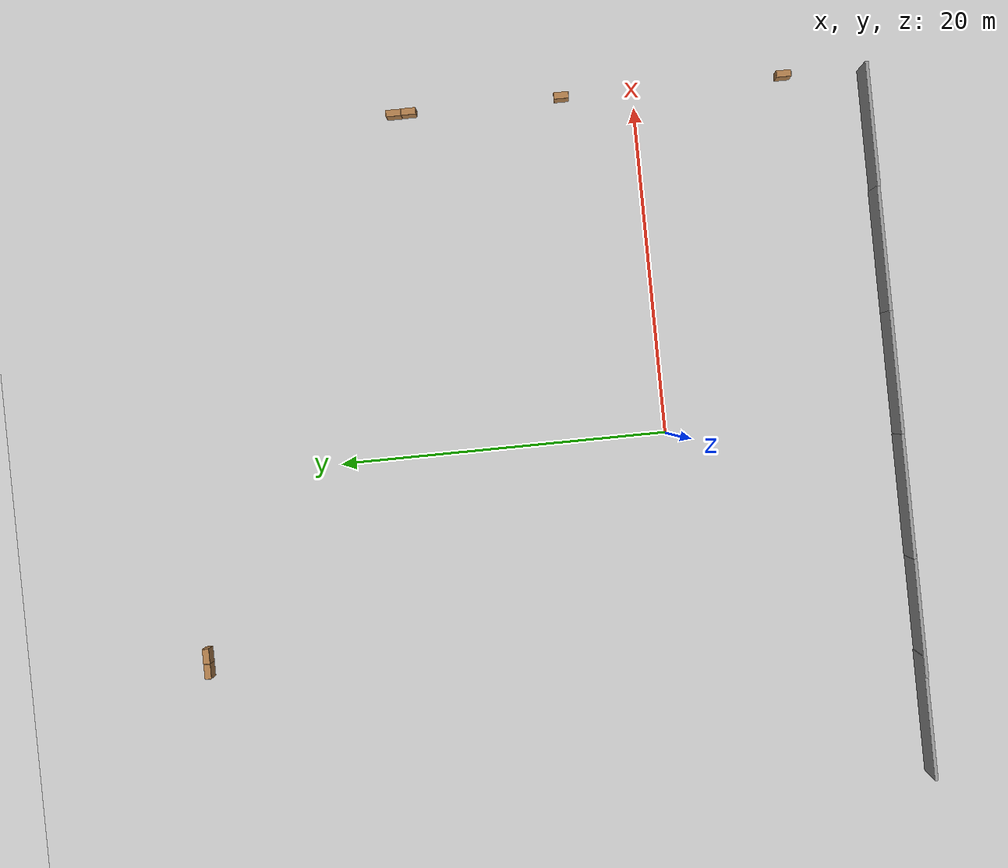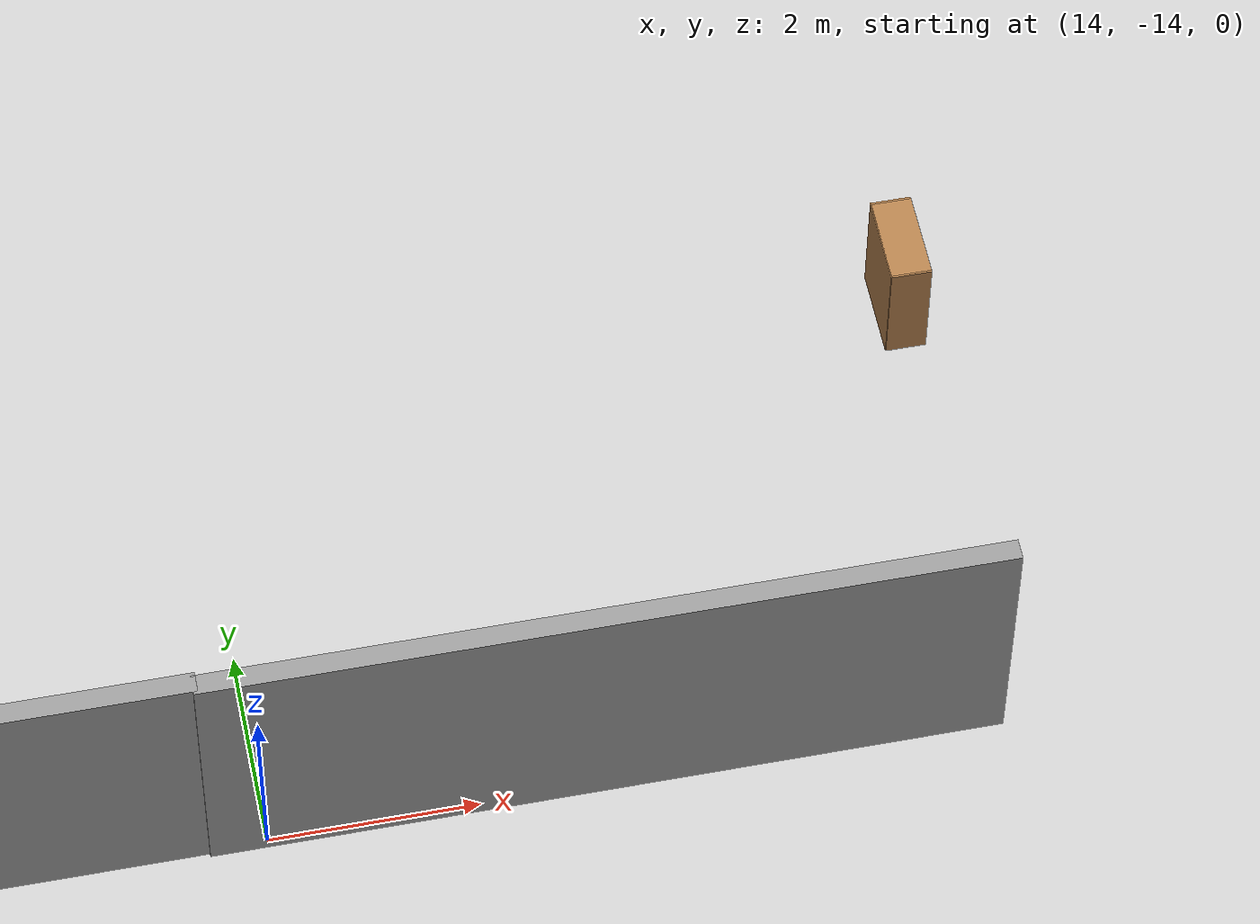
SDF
<sdf version="1.4">
 <world name="default">
  <light name="sun" type="directional">
   <pose>0 0 10 0 -0 0</pose>
   <diffuse>0.8 0.8 0.8 1</diffuse>
   <specular>0.2 0.2 0.2 1</specular>
   <attenuation>
    <range>1000</range>
    <constant>0.9</constant>
    <linear>0.01</linear>
    <quadratic>0.001</quadratic>
   </attenuation>
   <direction>-0.5 0.1 -0.9</direction>
  </light>
  <model name="ground_plane">
   <static>1</static>
   <link name="link">
    <collision name="collision">
     <geometry><plane><normal>0 0 1</normal><size>100 100</size></plane></geometry>
     <surface><friction><ode><mu>100</mu><mu2>50</mu2></ode></friction></surface>
    </collision>
    <visual name="visual">
     <cast_shadows>0</cast_shadows>
     <geometry><plane><normal>0 0 1</normal><size>100 100</size></plane></geometry>
     <material>
      <script><uri>file://media/materials/scripts/gazebo.material</uri><name>Gazebo/Grey</name></script>
     </material>
    </visual>
    <velocity_decay><linear>0</linear><angular>0</angular></velocity_decay>
   </link>
  </model>
  <physics type="ode">
   <max_step_size>0.01</max_step_size>
   <real_time_factor>1</real_time_factor>
   <real_time_update_rate>100</real_time_update_rate>
   <gravity>0 0 -9.8</gravity>
  </physics>
  <scene><ambient>0.4 0.4 0.4 1</ambient><background>0.7 0.7 0.7 1</background><shadows>1</shadows></scene>
  <spherical_coordinates>
   <surface_model>EARTH_WGS84</surface_model>
   <latitude_deg>0</latitude_deg>
   <longitude_deg>0</longitude_deg>
   <elevation>0</elevation>
   <heading_deg>0</heading_deg>
  </spherical_coordinates>
  <model name="bookshelf_1">
   <static>1</static>
   <link name="link">
    <inertial><mass>1</mass></inertial>
    <collision name="back">
     <pose>0 0.005 0.6 0 -0 0</pose>
     <geometry><box><size>0.9 0.01 1.2</size></box></geometry>
    </collision>
    <visual name="visual1">
     <pose>0 0.005 0.6 0 -0 0</pose>
     <geometry><box><size>0.9 0.01 1.2</size></box></geometry>
     <material>
      <script><uri>file://media/materials/scripts/gazebo.material</uri><name>Gazebo/Wood</name></script>
     </material>
    </visual>
    <collision name="left_side">
     <pose>0.45 -0.195 0.6 0 -0 0</pose>
     <geometry><box><size>0.02 0.4 1.2</size></box></geometry>
    </collision>
    <visual name="visual2">
     <pose>0.45 -0.195 0.6 0 -0 0</pose>
     <geometry><box><size>0.02 0.4 1.2</size></box></geometry>
     <material>
      <script><uri>file://media/materials/scripts/gazebo.material</uri><name>Gazebo/Wood</name></script>
     </material>
    </visual>
    <collision name="right_side">
     <pose>-0.45 -0.195 0.6 0 -0 0</pose>
     <geometry><box><size>0.02 0.4 1.2</size></box></geometry>
    </collision>
    <visual name="visual3">
     <pose>-0.45 -0.195 0.6 0 -0 0</pose>
     <geometry><box><size>0.02 0.4 1.2</size></box></geometry>
     <material>
      <script><uri>file://media/materials/scripts/gazebo.material</uri><name>Gazebo/Wood</name></script>
     </material>
    </visual>
    <collision name="bottom">
     <pose>0 -0.195 0.03 0 -0 0</pose>
     <geometry><box><size>0.88 0.4 0.06</size></box></geometry>
    </collision>
    <visual name="visual4">
     <pose>0 -0.195 0.03 0 -0 0</pose>
     <geometry><box><size>0.88 0.4 0.06</size></box></geometry>
     <material>
      <script><uri>file://media/materials/scripts/gazebo.material</uri><name>Gazebo/Wood</name></script>
     </material>
    </visual>
    <collision name="top">
     <pose>0 -0.195 1.19 0 -0 0</pose>
     <geometry><box><size>0.88 0.4 0.02</size></box></geometry>
    </collision>
    <visual name="visual5">
     <pose>0 -0.195 1.19 0 -0 0</pose>
     <geometry><box><size>0.88 0.4 0.02</size></box></geometry>
     <material>
      <script><uri>file://media/materials/scripts/gazebo.material</uri><name>Gazebo/Wood</name></script>
     </material>
    </visual>
    <collision name="low_shelf">
     <pose>0 -0.195 0.43 0 -0 0</pose>
     <geometry><box><size>0.88 0.4 0.02</size></box></geometry>
    </collision>
    <visual name="visual6">
     <pose>0 -0.195 0.43 0 -0 0</pose>
     <geometry><box><size>0.88 0.4 0.02</size></box></geometry>
     <material>
      <script><uri>file://media/materials/scripts/gazebo.material</uri><name>Gazebo/Wood</name></script>
     </material>
    </visual>
    <collision name="high_shelf">
     <pose>0 -0.195 0.8 0 -0 0</pose>
     <geometry><box><size>0.88 0.4 0.02</size></box></geometry>
    </collision>
    <visual name="visual7">
     <pose>0 -0.195 0.8 0 -0 0</pose>
     <geometry><box><size>0.88 0.4 0.02</size></box></geometry>
     <material>
      <script><uri>file://media/materials/scripts/gazebo.material</uri><name>Gazebo/Wood</name></script>
     </material>
    </visual>
    <velocity_decay><linear>0</linear><angular>0</angular></velocity_decay>
   </link>
   <pose>20.8468 -9.22027 0 0 -0 1.5708</pose>
  </model>
  <model name="bookshelf_2">
   <static>1</static>
   <link name="link">
    <inertial><mass>1</mass></inertial>
    <collision name="back">
     <pose>0 0.005 0.6 0 -0 0</pose>
     <geometry><box><size>0.9 0.01 1.2</size></box></geometry>
    </collision>
    <visual name="visual1">
     <pose>0 0.005 0.6 0 -0 0</pose>
     <geometry><box><size>0.9 0.01 1.2</size></box></geometry>
     <material>
      <script><uri>file://media/materials/scripts/gazebo.material</uri><name>Gazebo/Wood</name></script>
     </material>
    </visual>
    <collision name="left_side">
     <pose>0.45 -0.195 0.6 0 -0 0</pose>
     <geometry><box><size>0.02 0.4 1.2</size></box></geometry>
    </collision>
    <visual name="visual2">
     <pose>0.45 -0.195 0.6 0 -0 0</pose>
     <geometry><box><size>0.02 0.4 1.2</size></box></geometry>
     <material>
      <script><uri>file://media/materials/scripts/gazebo.material</uri><name>Gazebo/Wood</name></script>
     </material>
    </visual>
    <collision name="right_side">
     <pose>-0.45 -0.195 0.6 0 -0 0</pose>
     <geometry><box><size>0.02 0.4 1.2</size></box></geometry>
    </collision>
    <visual name="visual3">
     <pose>-0.45 -0.195 0.6 0 -0 0</pose>
     <geometry><box><size>0.02 0.4 1.2</size></box></geometry>
     <material>
      <script><uri>file://media/materials/scripts/gazebo.material</uri><name>Gazebo/Wood</name></script>
     </material>
    </visual>
    <collision name="bottom">
     <pose>0 -0.195 0.03 0 -0 0</pose>
     <geometry><box><size>0.88 0.4 0.06</size></box></geometry>
    </collision>
    <visual name="visual4">
     <pose>0 -0.195 0.03 0 -0 0</pose>
     <geometry><box><size>0.88 0.4 0.06</size></box></geometry>
     <material>
      <script><uri>file://media/materials/scripts/gazebo.material</uri><name>Gazebo/Wood</name></script>
     </material>
    </visual>
    <collision name="top">
     <pose>0 -0.195 1.19 0 -0 0</pose>
     <geometry><box><size>0.88 0.4 0.02</size></box></geometry>
    </collision>
    <visual name="visual5">
     <pose>0 -0.195 1.19 0 -0 0</pose>
     <geometry><box><size>0.88 0.4 0.02</size></box></geometry>
     <material>
      <script><uri>file://media/materials/scripts/gazebo.material</uri><name>Gazebo/Wood</name></script>
     </material>
    </visual>
    <collision name="low_shelf">
     <pose>0 -0.195 0.43 0 -0 0</pose>
     <geometry><box><size>0.88 0.4 0.02</size></box></geometry>
    </collision>
    <visual name="visual6">
     <pose>0 -0.195 0.43 0 -0 0</pose>
     <geometry><box><size>0.88 0.4 0.02</size></box></geometry>
     <material>
      <script><uri>file://media/materials/scripts/gazebo.material</uri><name>Gazebo/Wood</name></script>
     </material>
    </visual>
    <collision name="high_shelf">
     <pose>0 -0.195 0.8 0 -0 0</pose>
     <geometry><box><size>0.88 0.4 0.02</size></box></geometry>
    </collision>
    <visual name="visual7">
     <pose>0 -0.195 0.8 0 -0 0</pose>
     <geometry><box><size>0.88 0.4 0.02</size></box></geometry>
     <material>
      <script><uri>file://media/materials/scripts/gazebo.material</uri><name>Gazebo/Wood</name></script>
     </material>
    </visual>
    <velocity_decay><linear>0</linear><angular>0</angular></velocity_decay>
   </link>
   <pose>20.8573 4.38397 0 0 -0 1.5708</pose>
  </model>
  <model name="bookshelf_3">
   <static>1</static>
   <link name="link">
    <inertial><mass>1</mass></inertial>
    <collision name="back">
     <pose>0 0.005 0.6 0 -0 0</pose>
     <geometry><box><size>0.9 0.01 1.2</size></box></geometry>
    </collision>
    <visual name="visual1">
     <pose>0 0.005 0.6 0 -0 0</pose>
     <geometry><box><size>0.9 0.01 1.2</size></box></geometry>
     <material>
      <script><uri>file://media/materials/scripts/gazebo.material</uri><name>Gazebo/Wood</name></script>
     </material>
    </visual>
    <collision name="left_side">
     <pose>0.45 -0.195 0.6 0 -0 0</pose>
     <geometry><box><size>0.02 0.4 1.2</size></box></geometry>
    </collision>
    <visual name="visual2">
     <pose>0.45 -0.195 0.6 0 -0 0</pose>
     <geometry><box><size>0.02 0.4 1.2</size></box></geometry>
     <material>
      <script><uri>file://media/materials/scripts/gazebo.material</uri><name>Gazebo/Wood</name></script>
     </material>
    </visual>
    <collision name="right_side">
     <pose>-0.45 -0.195 0.6 0 -0 0</pose>
     <geometry><box><size>0.02 0.4 1.2</size></box></geometry>
    </collision>
    <visual name="visual3">
     <pose>-0.45 -0.195 0.6 0 -0 0</pose>
     <geometry><box><size>0.02 0.4 1.2</size></box></geometry>
     <material>
      <script><uri>file://media/materials/scripts/gazebo.material</uri><name>Gazebo/Wood</name></script>
     </material>
    </visual>
    <collision name="bottom">
     <pose>0 -0.195 0.03 0 -0 0</pose>
     <geometry><box><size>0.88 0.4 0.06</size></box></geometry>
    </collision>
    <visual name="visual4">
     <pose>0 -0.195 0.03 0 -0 0</pose>
     <geometry><box><size>0.88 0.4 0.06</size></box></geometry>
     <material>
      <script><uri>file://media/materials/scripts/gazebo.material</uri><name>Gazebo/Wood</name></script>
     </material>
    </visual>
    <collision name="top">
     <pose>0 -0.195 1.19 0 -0 0</pose>
     <geometry><box><size>0.88 0.4 0.02</size></box></geometry>
    </collision>
    <visual name="visual5">
     <pose>0 -0.195 1.19 0 -0 0</pose>
     <geometry><box><size>0.88 0.4 0.02</size></box></geometry>
     <material>
      <script><uri>file://media/materials/scripts/gazebo.material</uri><name>Gazebo/Wood</name></script>
     </material>
    </visual>
    <collision name="low_shelf">
     <pose>0 -0.195 0.43 0 -0 0</pose>
     <geometry><box><size>0.88 0.4 0.02</size></box></geometry>
    </collision>
    <visual name="visual6">
     <pose>0 -0.195 0.43 0 -0 0</pose>
     <geometry><box><size>0.88 0.4 0.02</size></box></geometry>
     <material>
      <script><uri>file://media/materials/scripts/gazebo.material</uri><name>Gazebo/Wood</name></script>
     </material>
    </visual>
    <collision name="high_shelf">
     <pose>0 -0.195 0.8 0 -0 0</pose>
     <geometry><box><size>0.88 0.4 0.02</size></box></geometry>
    </collision>
    <visual name="visual7">
     <pose>0 -0.195 0.8 0 -0 0</pose>
     <geometry><box><size>0.88 0.4 0.02</size></box></geometry>
     <material>
      <script><uri>file://media/materials/scripts/gazebo.material</uri><name>Gazebo/Wood</name></script>
     </material>
    </visual>
    <velocity_decay><linear>0</linear><angular>0</angular></velocity_decay>
   </link>
   <pose>20.8056 13.7419 0 0 -0 1.5708</pose>
  </model>
  <model name="bookshelf_6">
   <static>1</static>
   <link name="link">
    <inertial><mass>1</mass></inertial>
    <collision name="back">
     <pose>0 0.005 0.6 0 -0 0</pose>
     <geometry><box><size>0.9 0.01 1.2</size></box></geometry>
    </collision>
    <visual name="visual1">
     <pose>0 0.005 0.6 0 -0 0</pose>
     <geometry><box><size>0.9 0.01 1.2</size></box></geometry>
     <material>
      <script><uri>file://media/materials/scripts/gazebo.material</uri><name>Gazebo/Wood</name></script>
     </material>
    </visual>
    <collision name="left_side">
     <pose>0.45 -0.195 0.6 0 -0 0</pose>
     <geometry><box><size>0.02 0.4 1.2</size></box></geometry>
    </collision>
    <visual name="visual2">
     <pose>0.45 -0.195 0.6 0 -0 0</pose>
     <geometry><box><size>0.02 0.4 1.2</size></box></geometry>
     <material>
      <script><uri>file://media/materials/scripts/gazebo.material</uri><name>Gazebo/Wood</name></script>
     </material>
    </visual>
    <collision name="right_side">
     <pose>-0.45 -0.195 0.6 0 -0 0</pose>
     <geometry><box><size>0.02 0.4 1.2</size></box></geometry>
    </collision>
    <visual name="visual3">
     <pose>-0.45 -0.195 0.6 0 -0 0</pose>
     <geometry><box><size>0.02 0.4 1.2</size></box></geometry>
     <material>
      <script><uri>file://media/materials/scripts/gazebo.material</uri><name>Gazebo/Wood</name></script>
     </material>
    </visual>
    <collision name="bottom">
     <pose>0 -0.195 0.03 0 -0 0</pose>
     <geometry><box><size>0.88 0.4 0.06</size></box></geometry>
    </collision>
    <visual name="visual4">
     <pose>0 -0.195 0.03 0 -0 0</pose>
     <geometry><box><size>0.88 0.4 0.06</size></box></geometry>
     <material>
      <script><uri>file://media/materials/scripts/gazebo.material</uri><name>Gazebo/Wood</name></script>
     </material>
    </visual>
    <collision name="top">
     <pose>0 -0.195 1.19 0 -0 0</pose>
     <geometry><box><size>0.88 0.4 0.02</size></box></geometry>
    </collision>
    <visual name="visual5">
     <pose>0 -0.195 1.19 0 -0 0</pose>
     <geometry><box><size>0.88 0.4 0.02</size></box></geometry>
     <material>
      <script><uri>file://media/materials/scripts/gazebo.material</uri><name>Gazebo/Wood</name></script>
     </material>
    </visual>
    <collision name="low_shelf">
     <pose>0 -0.195 0.43 0 -0 0</pose>
     <geometry><box><size>0.88 0.4 0.02</size></box></geometry>
    </collision>
    <visual name="visual6">
     <pose>0 -0.195 0.43 0 -0 0</pose>
     <geometry><box><size>0.88 0.4 0.02</size></box></geometry>
     <material>
      <script><uri>file://media/materials/scripts/gazebo.material</uri><name>Gazebo/Wood</name></script>
     </material>
    </visual>
    <collision name="high_shelf">
     <pose>0 -0.195 0.8 0 -0 0</pose>
     <geometry><box><size>0.88 0.4 0.02</size></box></geometry>
    </collision>
    <visual name="visual7">
     <pose>0 -0.195 0.8 0 -0 0</pose>
     <geometry><box><size>0.88 0.4 0.02</size></box></geometry>
     <material>
      <script><uri>file://media/materials/scripts/gazebo.material</uri><name>Gazebo/Wood</name></script>
     </material>
    </visual>
    <velocity_decay><linear>0</linear><angular>0</angular></velocity_decay>
   </link>
   <pose>-11.7107 29.0391 0 0 0 -3.14159</pose>
  </model>
  <model name="bookshelf_7">
   <static>1</static>
   <link name="link">
    <inertial><mass>1</mass></inertial>
    <collision name="back">
     <pose>0 0.005 0.6 0 -0 0</pose>
     <geometry><box><size>0.9 0.01 1.2</size></box></geometry>
    </collision>
    <visual name="visual1">
     <pose>0 0.005 0.6 0 -0 0</pose>
     <geometry><box><size>0.9 0.01 1.2</size></box></geometry>
     <material>
      <script><uri>file://media/materials/scripts/gazebo.material</uri><name>Gazebo/Wood</name></script>
     </material>
    </visual>
    <collision name="left_side">
     <pose>0.45 -0.195 0.6 0 -0 0</pose>
     <geometry><box><size>0.02 0.4 1.2</size></box></geometry>
    </collision>
    <visual name="visual2">
     <pose>0.45 -0.195 0.6 0 -0 0</pose>
     <geometry><box><size>0.02 0.4 1.2</size></box></geometry>
     <material>
      <script><uri>file://media/materials/scripts/gazebo.material</uri><name>Gazebo/Wood</name></script>
     </material>
    </visual>
    <collision name="right_side">
     <pose>-0.45 -0.195 0.6 0 -0 0</pose>
     <geometry><box><size>0.02 0.4 1.2</size></box></geometry>
    </collision>
    <visual name="visual3">
     <pose>-0.45 -0.195 0.6 0 -0 0</pose>
     <geometry><box><size>0.02 0.4 1.2</size></box></geometry>
     <material>
      <script><uri>file://media/materials/scripts/gazebo.material</uri><name>Gazebo/Wood</name></script>
     </material>
    </visual>
    <collision name="bottom">
     <pose>0 -0.195 0.03 0 -0 0</pose>
     <geometry><box><size>0.88 0.4 0.06</size></box></geometry>
    </collision>
    <visual name="visual4">
     <pose>0 -0.195 0.03 0 -0 0</pose>
     <geometry><box><size>0.88 0.4 0.06</size></box></geometry>
     <material>
      <script><uri>file://media/materials/scripts/gazebo.material</uri><name>Gazebo/Wood</name></script>
     </material>
    </visual>
    <collision name="top">
     <pose>0 -0.195 1.19 0 -0 0</pose>
     <geometry><box><size>0.88 0.4 0.02</size></box></geometry>
    </collision>
    <visual name="visual5">
     <pose>0 -0.195 1.19 0 -0 0</pose>
     <geometry><box><size>0.88 0.4 0.02</size></box></geometry>
     <material>
      <script><uri>file://media/materials/scripts/gazebo.material</uri><name>Gazebo/Wood</name></script>
     </material>
    </visual>
    <collision name="low_shelf">
     <pose>0 -0.195 0.43 0 -0 0</pose>
     <geometry><box><size>0.88 0.4 0.02</size></box></geometry>
    </collision>
    <visual name="visual6">
     <pose>0 -0.195 0.43 0 -0 0</pose>
     <geometry><box><size>0.88 0.4 0.02</size></box></geometry>
     <material>
      <script><uri>file://media/materials/scripts/gazebo.material</uri><name>Gazebo/Wood</name></script>
     </material>
    </visual>
    <collision name="high_shelf">
     <pose>0 -0.195 0.8 0 -0 0</pose>
     <geometry><box><size>0.88 0.4 0.02</size></box></geometry>
    </collision>
    <visual name="visual7">
     <pose>0 -0.195 0.8 0 -0 0</pose>
     <geometry><box><size>0.88 0.4 0.02</size></box></geometry>
     <material>
      <script><uri>file://media/materials/scripts/gazebo.material</uri><name>Gazebo/Wood</name></script>
     </material>
    </visual>
    <velocity_decay><linear>0</linear><angular>0</angular></velocity_decay>
   </link>
   <pose>20.7918 14.6581 0 0 -0 1.5708</pose>
  </model>
  <model name="bookshelf_8">
   <static>1</static>
   <link name="link">
    <inertial><mass>1</mass></inertial>
    <collision name="back">
     <pose>0 0.005 0.6 0 -0 0</pose>
     <geometry><box><size>0.9 0.01 1.2</size></box></geometry>
    </collision>
    <visual name="visual1">
     <pose>0 0.005 0.6 0 -0 0</pose>
     <geometry><box><size>0.9 0.01 1.2</size></box></geometry>
     <material>
      <script><uri>file://media/materials/scripts/gazebo.material</uri><name>Gazebo/Wood</name></script>
     </material>
    </visual>
    <collision name="left_side">
     <pose>0.45 -0.195 0.6 0 -0 0</pose>
     <geometry><box><size>0.02 0.4 1.2</size></box></geometry>
    </collision>
    <visual name="visual2">
     <pose>0.45 -0.195 0.6 0 -0 0</pose>
     <geometry><box><size>0.02 0.4 1.2</size></box></geometry>
     <material>
      <script><uri>file://media/materials/scripts/gazebo.material</uri><name>Gazebo/Wood</name></script>
     </material>
    </visual>
    <collision name="right_side">
     <pose>-0.45 -0.195 0.6 0 -0 0</pose>
     <geometry><box><size>0.02 0.4 1.2</size></box></geometry>
    </collision>
    <visual name="visual3">
     <pose>-0.45 -0.195 0.6 0 -0 0</pose>
     <geometry><box><size>0.02 0.4 1.2</size></box></geometry>
     <material>
      <script><uri>file://media/materials/scripts/gazebo.material</uri><name>Gazebo/Wood</name></script>
     </material>
    </visual>
    <collision name="bottom">
     <pose>0 -0.195 0.03 0 -0 0</pose>
     <geometry><box><size>0.88 0.4 0.06</size></box></geometry>
    </collision>
    <visual name="visual4">
     <pose>0 -0.195 0.03 0 -0 0</pose>
     <geometry><box><size>0.88 0.4 0.06</size></box></geometry>
     <material>
      <script><uri>file://media/materials/scripts/gazebo.material</uri><name>Gazebo/Wood</name></script>
     </material>
    </visual>
    <collision name="top">
     <pose>0 -0.195 1.19 0 -0 0</pose>
     <geometry><box><size>0.88 0.4 0.02</size></box></geometry>
    </collision>
    <visual name="visual5">
     <pose>0 -0.195 1.19 0 -0 0</pose>
     <geometry><box><size>0.88 0.4 0.02</size></box></geometry>
     <material>
      <script><uri>file://media/materials/scripts/gazebo.material</uri><name>Gazebo/Wood</name></script>
     </material>
    </visual>
    <collision name="low_shelf">
     <pose>0 -0.195 0.43 0 -0 0</pose>
     <geometry><box><size>0.88 0.4 0.02</size></box></geometry>
    </collision>
    <visual name="visual6">
     <pose>0 -0.195 0.43 0 -0 0</pose>
     <geometry><box><size>0.88 0.4 0.02</size></box></geometry>
     <material>
      <script><uri>file://media/materials/scripts/gazebo.material</uri><name>Gazebo/Wood</name></script>
     </material>
    </visual>
    <collision name="high_shelf">
     <pose>0 -0.195 0.8 0 -0 0</pose>
     <geometry><box><size>0.88 0.4 0.02</size></box></geometry>
    </collision>
    <visual name="visual7">
     <pose>0 -0.195 0.8 0 -0 0</pose>
     <geometry><box><size>0.88 0.4 0.02</size></box></geometry>
     <material>
      <script><uri>file://media/materials/scripts/gazebo.material</uri><name>Gazebo/Wood</name></script>
     </material>
    </visual>
    <velocity_decay><linear>0</linear><angular>0</angular></velocity_decay>
   </link>
   <pose>-10.7815 29.0404 0 0 0 -3.14159</pose>
  </model>
  <model name="grey_wall">
   <static>1</static>
   <link name="link">
    <pose>0 0 1.4 0 -0 0</pose>
    <collision name="collision"><geometry><box><size>7.5 0.2 2.8</size></box></geometry></collision>
    <visual name="visual">
     <cast_shadows>0</cast_shadows>
     <geometry><box><size>7.5 0.2 2.8</size></box></geometry>
     <material>
      <script>
       <uri>model://grey_wall/materials/scripts</uri>
       <uri>model://grey_wall/materials/textures</uri>
       <name>vrc/grey_wall</name>
      </script>
     </material>
    </visual>
    <velocity_decay><linear>0</linear><angular>0</angular></velocity_decay>
   </link>
   <pose>17.2048 -13.9738 0 0 -0 0</pose>
  </model>
  <model name="grey_wall_0">
   <static>1</static>
   <link name="link">
    <pose>0 0 1.4 0 -0 0</pose>
    <collision name="collision"><geometry><box><size>7.5 0.2 2.8</size></box></geometry></collision>
    <visual name="visual">
     <cast_shadows>0</cast_shadows>
     <geometry><box><size>7.5 0.2 2.8</size></box></geometry>
     <material>
      <script>
       <uri>model://grey_wall/materials/scripts</uri>
       <uri>model://grey_wall/materials/textures</uri>
       <name>vrc/grey_wall</name>
      </script>
     </material>
    </visual>
    <velocity_decay><linear>0</linear><angular>0</angular></velocity_decay>
   </link>
   <pose>9.74758 -13.9444 0 0 -0 0</pose>
  </model>
  <model name="grey_wall_1">
   <static>1</static>
   <link name="link">
    <pose>0 0 1.4 0 -0 0</pose>
    <collision name="collision"><geometry><box><size>7.5 0.2 2.8</size></box></geometry></collision>
    <visual name="visual">
     <cast_shadows>0</cast_shadows>
     <geometry><box><size>7.5 0.2 2.8</size></box></geometry>
     <material>
      <script>
       <uri>model://grey_wall/materials/scripts</uri>
       <uri>model://grey_wall/materials/textures</uri>
       <name>vrc/grey_wall</name>
      </script>
     </material>
    </visual>
    <velocity_decay><linear>0</linear><angular>0</angular></velocity_decay>
   </link>
   <pose>2.32593 -13.9448 0 0 -0 0</pose>
  </model>
  <model name="grey_wall_2">
   <static>1</static>
   <link name="link">
    <pose>0 0 1.4 0 -0 0</pose>
    <collision name="collision"><geometry><box><size>7.5 0.2 2.8</size></box></geometry></collision>
    <visual name="visual">
     <cast_shadows>0</cast_shadows>
     <geometry><box><size>7.5 0.2 2.8</size></box></geometry>
     <material>
      <script>
       <uri>model://grey_wall/materials/scripts</uri>
       <uri>model://grey_wall/materials/textures</uri>
       <name>vrc/grey_wall</name>
      </script>
     </material>
    </visual>
    <velocity_decay><linear>0</linear><angular>0</angular></velocity_decay>
   </link>
   <pose>-5.18722 -13.9302 0 0 -0 0</pose>
  </model>
  <model name="grey_wall_3">
   <static>1</static>
   <link name="link">
    <pose>0 0 1.4 0 -0 0</pose>
    <collision name="collision"><geometry><box><size>7.5 0.2 2.8</size></box></geometry></collision>
    <visual name="visual">
     <cast_shadows>0</cast_shadows>
     <geometry><box><size>7.5 0.2 2.8</size></box></geometry>
     <material>
      <script>
       <uri>model://grey_wall/materials/scripts</uri>
       <uri>model://grey_wall/materials/textures</uri>
       <name>vrc/grey_wall</name>
      </script>
     </material>
    </visual>
    <velocity_decay><linear>0</linear><angular>0</angular></velocity_decay>
   </link>
   <pose>-12.3366 -13.9449 0 0 -0 0</pose>
  </model>
  <model name="grey_wall_4">
   <static>1</static>
   <link name="link">
    <pose>0 0 1.4 0 -0 0</pose>
    <collision name="collision"><geometry><box><size>7.5 0.2 2.8</size></box></geometry></collision>
    <visual name="visual">
     <cast_shadows>0</cast_shadows>
     <geometry><box><size>7.5 0.2 2.8</size></box></geometry>
     <material>
      <script>
       <uri>model://grey_wall/materials/scripts</uri>
       <uri>model://grey_wall/materials/textures</uri>
       <name>vrc/grey_wall</name>
      </script>
     </material>
    </visual>
    <velocity_decay><linear>0</linear><angular>0</angular></velocity_decay>
   </link>
   <pose>-18.5036 -13.9068 0 0 -0 0</pose>
  </model>
 </world>
</sdf>
